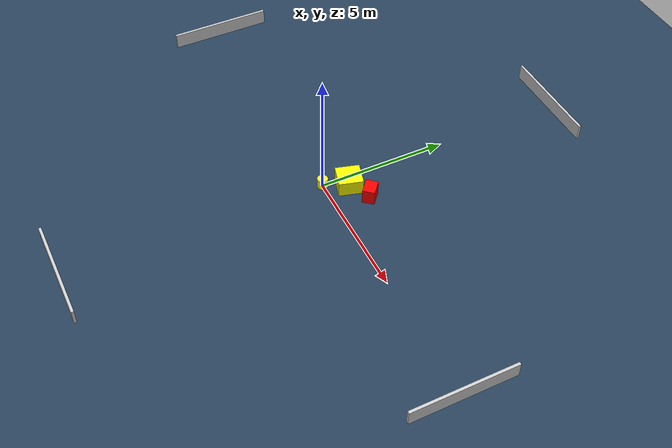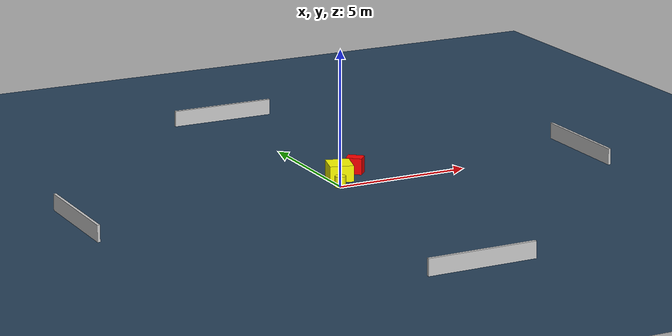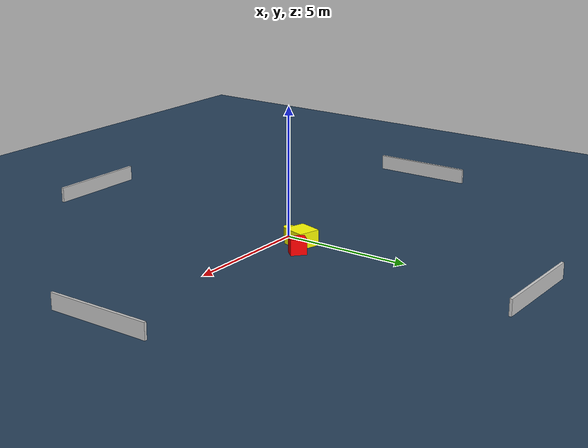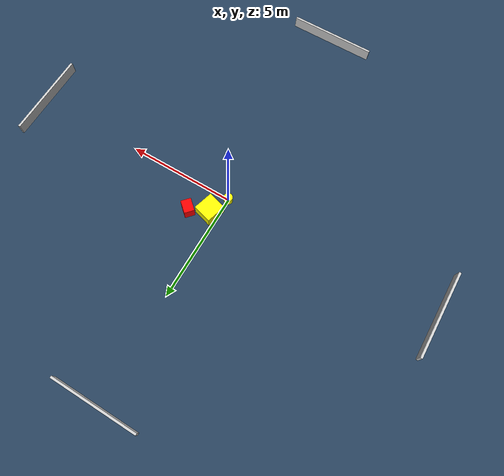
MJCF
<?xml version="1.0" ?>
<mujoco model="generated_environment">
  <option timestep="0.01" integrator="RK4" cone="elliptic"/>
  <default>
    <geom density="1"/>
  </default>
  <asset>
    <texture builtin="gradient" height="3072" name="skybox" rgb1="0.3 0.5 0.7" rgb2="0 0 0" type="skybox" width="512"/>
    <texture builtin="checker" height="300" name="groundplane" rgb1="0.2 0.3 0.4" rgb2="0.1 0.2 0.3" type="2d" width="300"/>
    <material name="groundplane" reflectance="0.2" texrepeat="5 5" texture="groundplane"/>
  </asset>
  <worldbody>
    <light dir="0 0 -1" directional="true" pos="0 0 1.5"/>
    <geom condim="3" friction="0.5 0.005 0.001" material="groundplane" name="floor" pos="0 0 0" size="0 0 0.05" type="plane"/>
    <body name="walls">
      <geom name="wall_1" condim="4" pos="-10.0 0.0 0.3" rgba="0.800000011920929 0.800000011920929 0.800000011920929 1.0" size="0.05 2.0 0.3" type="box"/>
      <geom name="wall_2" condim="4" pos="10.0 0.0 0.3" rgba="0.800000011920929 0.800000011920929 0.800000011920929 1.0" size="0.05 2.0 0.3" type="box"/>
      <geom name="wall_3" condim="4" pos="0.0 -10.0 0.3" rgba="0.800000011920929 0.800000011920929 0.800000011920929 1.0" size="2.0 0.05 0.3" type="box"/>
      <geom name="wall_4" condim="4" pos="0.0 10.0 0.3" rgba="0.800000011920929 0.800000011920929 0.800000011920929 1.0" size="2.0 0.05 0.3" type="box"/>
    </body>
    <body name="robot">
      <joint name="joint_x" type="slide" pos="0 0 0" axis="1 0 0"/>
      <joint name="joint_y" type="slide" pos="0 0 0" axis="0 1 0"/>
      <geom name="robot" type="cylinder" pos="0.0 0.0 0.2" size="0.2 0.2 0.0" mass="5.0" friction="1.0 0.005 0.0001" condim="4" rgba="1.0 1.0 0.0 1.0"/>
    </body>
    <body name="obstacle_1_movable">
      <geom name="obstacle_1_movable" condim="4" pos="0.4158365922744057 0.8792451776143546 0.3" euler="0 0 74.0290881671926" friction="0.0 0.005 0.001" rgba="1.0 1.0 0.0 1.0" size="0.46215825862092463 0.43420934169998915 0.3" type="box" mass="0.1"/>
      <joint type="free"/>
    </body>
    <body name="obstacle_2_static">
      <geom name="obstacle_2_static" condim="4" pos="1.273837095248534 1.3095676214852858 0.3" euler="0 0 318.32445802664944" friction="0.0 0.005 0.001" rgba="1.0 0.0 0.0 1.0" size="0.2999683368997272 0.2336991527425124 0.3" type="box"/>
    </body>
  </worldbody>
  <actuator>
    <motor name="actuator_x" joint="joint_x" gear="1" ctrlrange="-1 1"/>
    <motor name="actuator_y" joint="joint_y" gear="1" ctrlrange="-1 1"/>
  </actuator>
</mujoco>
